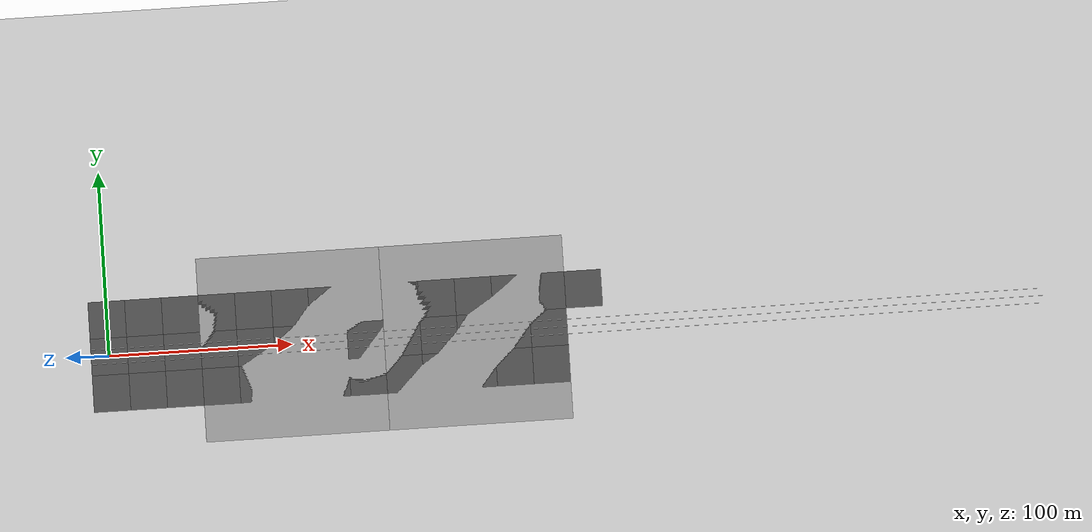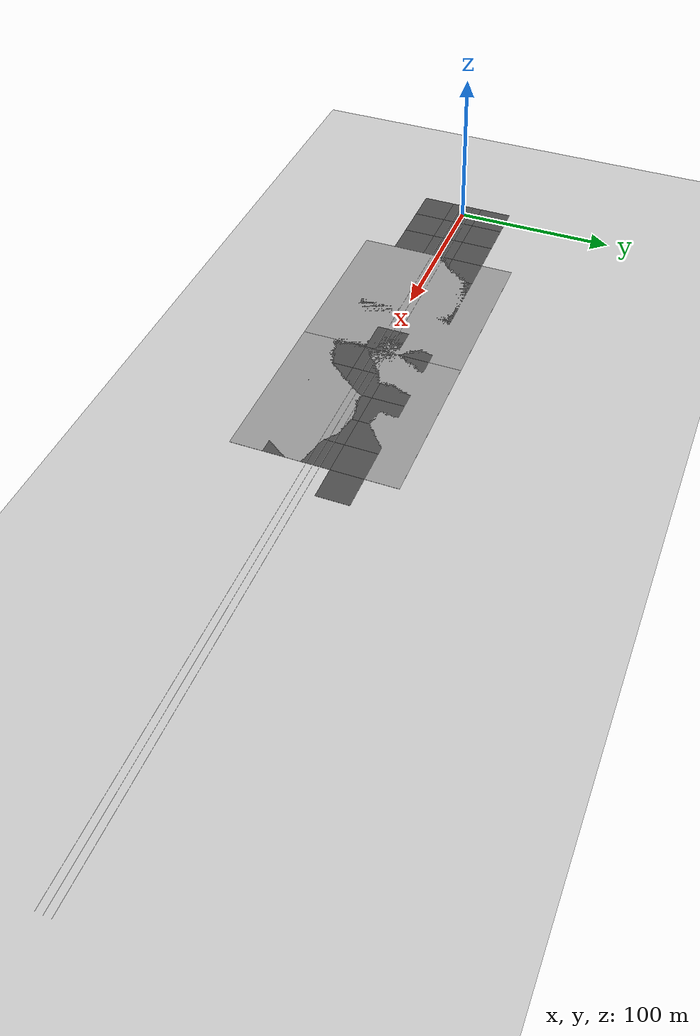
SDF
<sdf version="1.4">
 <world name="default">
  <model name="ground_plane">
   <static>1</static>
   <link name="link">
    <collision name="collision">
     <geometry><plane><normal>0 0 1</normal><size>100 100</size></plane></geometry>
     <surface><friction><ode><mu>100</mu><mu2>50</mu2></ode></friction></surface>
    </collision>
    <visual name="visual">
     <cast_shadows>0</cast_shadows>
     <geometry><plane><normal>0 0 1</normal><size>100 100</size></plane></geometry>
     <material>
      <script><uri>file://media/materials/scripts/gazebo.material</uri><name>Gazebo/Grey</name></script>
     </material>
    </visual>
    <velocity_decay><linear>0</linear><angular>0</angular></velocity_decay>
   </link>
  </model>
  <model name="ground_plane_0">
   <static>1</static>
   <link name="link">
    <collision name="collision">
     <geometry><plane><normal>0 0 1</normal><size>100 100</size></plane></geometry>
     <surface><friction><ode><mu>100</mu><mu2>50</mu2></ode></friction></surface>
    </collision>
    <visual name="visual">
     <cast_shadows>0</cast_shadows>
     <geometry><plane><normal>0 0 1</normal><size>100 100</size></plane></geometry>
     <material>
      <script><uri>file://media/materials/scripts/gazebo.material</uri><name>Gazebo/Grey</name></script>
     </material>
    </visual>
    <velocity_decay><linear>0</linear><angular>0</angular></velocity_decay>
   </link>
   <pose>100 0 0 0 -0 0</pose>
  </model>
  <model name="ground_plane_1">
   <static>1</static>
   <link name="link">
    <collision name="collision">
     <geometry><plane><normal>0 0 1</normal><size>100 100</size></plane></geometry>
     <surface><friction><ode><mu>100</mu><mu2>50</mu2></ode></friction></surface>
    </collision>
    <visual name="visual">
     <cast_shadows>0</cast_shadows>
     <geometry><plane><normal>0 0 1</normal><size>100 100</size></plane></geometry>
     <material>
      <script><uri>file://media/materials/scripts/gazebo.material</uri><name>Gazebo/Grey</name></script>
     </material>
    </visual>
    <velocity_decay><linear>0</linear><angular>0</angular></velocity_decay>
   </link>
   <pose>200 0 0 0 -0 0</pose>
  </model>
  <model name="asphalt_plane_0_m">
   <static>1</static>
   <link name="link">
    <collision name="collision"><geometry><box><size>20 20 0.1</size></box></geometry></collision>
    <visual name="visual">
     <cast_shadows>0</cast_shadows>
     <geometry><box><size>20 20 0.1</size></box></geometry>
     <material>
      <script>
       <uri>model://asphalt_plane/materials/scripts</uri>
       <uri>model://asphalt_plane/materials/textures</uri>
       <name>vrc/asphalt</name>
      </script>
     </material>
    </visual>
    <velocity_decay><linear>0</linear><angular>0</angular></velocity_decay>
   </link>
  </model>
  <model name="asphalt_plane_0_l">
   <static>1</static>
   <link name="link">
    <collision name="collision"><geometry><box><size>20 20 0.1</size></box></geometry></collision>
    <visual name="visual">
     <cast_shadows>0</cast_shadows>
     <geometry><box><size>20 20 0.1</size></box></geometry>
     <material>
      <script>
       <uri>model://asphalt_plane/materials/scripts</uri>
       <uri>model://asphalt_plane/materials/textures</uri>
       <name>vrc/asphalt</name>
      </script>
     </material>
    </visual>
    <velocity_decay><linear>0</linear><angular>0</angular></velocity_decay>
   </link>
   <pose>0 20 0 0 -0 0</pose>
  </model>
  <model name="asphalt_plane_0_r">
   <static>1</static>
   <link name="link">
    <collision name="collision"><geometry><box><size>20 20 0.1</size></box></geometry></collision>
    <visual name="visual">
     <cast_shadows>0</cast_shadows>
     <geometry><box><size>20 20 0.1</size></box></geometry>
     <material>
      <script>
       <uri>model://asphalt_plane/materials/scripts</uri>
       <uri>model://asphalt_plane/materials/textures</uri>
       <name>vrc/asphalt</name>
      </script>
     </material>
    </visual>
    <velocity_decay><linear>0</linear><angular>0</angular></velocity_decay>
   </link>
   <pose>0 -20 0 0 -0 0</pose>
  </model>
  <model name="asphalt_plane_1_m">
   <static>1</static>
   <link name="link">
    <collision name="collision"><geometry><box><size>20 20 0.1</size></box></geometry></collision>
    <visual name="visual">
     <cast_shadows>0</cast_shadows>
     <geometry><box><size>20 20 0.1</size></box></geometry>
     <material>
      <script>
       <uri>model://asphalt_plane/materials/scripts</uri>
       <uri>model://asphalt_plane/materials/textures</uri>
       <name>vrc/asphalt</name>
      </script>
     </material>
    </visual>
    <velocity_decay><linear>0</linear><angular>0</angular></velocity_decay>
   </link>
   <pose>20 0 0 0 -0 0</pose>
  </model>
  <model name="asphalt_plane_1_l">
   <static>1</static>
   <link name="link">
    <collision name="collision"><geometry><box><size>20 20 0.1</size></box></geometry></collision>
    <visual name="visual">
     <cast_shadows>0</cast_shadows>
     <geometry><box><size>20 20 0.1</size></box></geometry>
     <material>
      <script>
       <uri>model://asphalt_plane/materials/scripts</uri>
       <uri>model://asphalt_plane/materials/textures</uri>
       <name>vrc/asphalt</name>
      </script>
     </material>
    </visual>
    <velocity_decay><linear>0</linear><angular>0</angular></velocity_decay>
   </link>
   <pose>20 20 0 0 -0 0</pose>
  </model>
  <model name="asphalt_plane_1_r">
   <static>1</static>
   <link name="link">
    <collision name="collision"><geometry><box><size>20 20 0.1</size></box></geometry></collision>
    <visual name="visual">
     <cast_shadows>0</cast_shadows>
     <geometry><box><size>20 20 0.1</size></box></geometry>
     <material>
      <script>
       <uri>model://asphalt_plane/materials/scripts</uri>
       <uri>model://asphalt_plane/materials/textures</uri>
       <name>vrc/asphalt</name>
      </script>
     </material>
    </visual>
    <velocity_decay><linear>0</linear><angular>0</angular></velocity_decay>
   </link>
   <pose>20 -20 0 0 -0 0</pose>
  </model>
  <model name="asphalt_plane_2_m">
   <static>1</static>
   <link name="link">
    <collision name="collision"><geometry><box><size>20 20 0.1</size></box></geometry></collision>
    <visual name="visual">
     <cast_shadows>0</cast_shadows>
     <geometry><box><size>20 20 0.1</size></box></geometry>
     <material>
      <script>
       <uri>model://asphalt_plane/materials/scripts</uri>
       <uri>model://asphalt_plane/materials/textures</uri>
       <name>vrc/asphalt</name>
      </script>
     </material>
    </visual>
    <velocity_decay><linear>0</linear><angular>0</angular></velocity_decay>
   </link>
   <pose>40 0 0 0 -0 0</pose>
  </model>
  <model name="asphalt_plane_2_l">
   <static>1</static>
   <link name="link">
    <collision name="collision"><geometry><box><size>20 20 0.1</size></box></geometry></collision>
    <visual name="visual">
     <cast_shadows>0</cast_shadows>
     <geometry><box><size>20 20 0.1</size></box></geometry>
     <material>
      <script>
       <uri>model://asphalt_plane/materials/scripts</uri>
       <uri>model://asphalt_plane/materials/textures</uri>
       <name>vrc/asphalt</name>
      </script>
     </material>
    </visual>
    <velocity_decay><linear>0</linear><angular>0</angular></velocity_decay>
   </link>
   <pose>40 20 0 0 -0 0</pose>
  </model>
  <model name="asphalt_plane_2_r">
   <static>1</static>
   <link name="link">
    <collision name="collision"><geometry><box><size>20 20 0.1</size></box></geometry></collision>
    <visual name="visual">
     <cast_shadows>0</cast_shadows>
     <geometry><box><size>20 20 0.1</size></box></geometry>
     <material>
      <script>
       <uri>model://asphalt_plane/materials/scripts</uri>
       <uri>model://asphalt_plane/materials/textures</uri>
       <name>vrc/asphalt</name>
      </script>
     </material>
    </visual>
    <velocity_decay><linear>0</linear><angular>0</angular></velocity_decay>
   </link>
   <pose>40 -20 0 0 -0 0</pose>
  </model>
  <model name="asphalt_plane_3_m">
   <static>1</static>
   <link name="link">
    <collision name="collision"><geometry><box><size>20 20 0.1</size></box></geometry></collision>
    <visual name="visual">
     <cast_shadows>0</cast_shadows>
     <geometry><box><size>20 20 0.1</size></box></geometry>
     <material>
      <script>
       <uri>model://asphalt_plane/materials/scripts</uri>
       <uri>model://asphalt_plane/materials/textures</uri>
       <name>vrc/asphalt</name>
      </script>
     </material>
    </visual>
    <velocity_decay><linear>0</linear><angular>0</angular></velocity_decay>
   </link>
   <pose>60 0 0 0 -0 0</pose>
  </model>
  <model name="asphalt_plane_3_l">
   <static>1</static>
   <link name="link">
    <collision name="collision"><geometry><box><size>20 20 0.1</size></box></geometry></collision>
    <visual name="visual">
     <cast_shadows>0</cast_shadows>
     <geometry><box><size>20 20 0.1</size></box></geometry>
     <material>
      <script>
       <uri>model://asphalt_plane/materials/scripts</uri>
       <uri>model://asphalt_plane/materials/textures</uri>
       <name>vrc/asphalt</name>
      </script>
     </material>
    </visual>
    <velocity_decay><linear>0</linear><angular>0</angular></velocity_decay>
   </link>
   <pose>60 20 0 0 -0 0</pose>
  </model>
  <model name="asphalt_plane_3_r">
   <static>1</static>
   <link name="link">
    <collision name="collision"><geometry><box><size>20 20 0.1</size></box></geometry></collision>
    <visual name="visual">
     <cast_shadows>0</cast_shadows>
     <geometry><box><size>20 20 0.1</size></box></geometry>
     <material>
      <script>
       <uri>model://asphalt_plane/materials/scripts</uri>
       <uri>model://asphalt_plane/materials/textures</uri>
       <name>vrc/asphalt</name>
      </script>
     </material>
    </visual>
    <velocity_decay><linear>0</linear><angular>0</angular></velocity_decay>
   </link>
   <pose>60 -20 0 0 -0 0</pose>
  </model>
  <model name="asphalt_plane_4_m">
   <static>1</static>
   <link name="link">
    <collision name="collision"><geometry><box><size>20 20 0.1</size></box></geometry></collision>
    <visual name="visual">
     <cast_shadows>0</cast_shadows>
     <geometry><box><size>20 20 0.1</size></box></geometry>
     <material>
      <script>
       <uri>model://asphalt_plane/materials/scripts</uri>
       <uri>model://asphalt_plane/materials/textures</uri>
       <name>vrc/asphalt</name>
      </script>
     </material>
    </visual>
    <velocity_decay><linear>0</linear><angular>0</angular></velocity_decay>
   </link>
   <pose>80 0 0 0 -0 0</pose>
  </model>
  <model name="asphalt_plane_4_l">
   <static>1</static>
   <link name="link">
    <collision name="collision"><geometry><box><size>20 20 0.1</size></box></geometry></collision>
    <visual name="visual">
     <cast_shadows>0</cast_shadows>
     <geometry><box><size>20 20 0.1</size></box></geometry>
     <material>
      <script>
       <uri>model://asphalt_plane/materials/scripts</uri>
       <uri>model://asphalt_plane/materials/textures</uri>
       <name>vrc/asphalt</name>
      </script>
     </material>
    </visual>
    <velocity_decay><linear>0</linear><angular>0</angular></velocity_decay>
   </link>
   <pose>80 20 0 0 -0 0</pose>
  </model>
  <model name="asphalt_plane_4_r">
   <static>1</static>
   <link name="link">
    <collision name="collision"><geometry><box><size>20 20 0.1</size></box></geometry></collision>
    <visual name="visual">
     <cast_shadows>0</cast_shadows>
     <geometry><box><size>20 20 0.1</size></box></geometry>
     <material>
      <script>
       <uri>model://asphalt_plane/materials/scripts</uri>
       <uri>model://asphalt_plane/materials/textures</uri>
       <name>vrc/asphalt</name>
      </script>
     </material>
    </visual>
    <velocity_decay><linear>0</linear><angular>0</angular></velocity_decay>
   </link>
   <pose>80 -20 0 0 -0 0</pose>
  </model>
  <model name="asphalt_plane_5_m">
   <static>1</static>
   <link name="link">
    <collision name="collision"><geometry><box><size>20 20 0.1</size></box></geometry></collision>
    <visual name="visual">
     <cast_shadows>0</cast_shadows>
     <geometry><box><size>20 20 0.1</size></box></geometry>
     <material>
      <script>
       <uri>model://asphalt_plane/materials/scripts</uri>
       <uri>model://asphalt_plane/materials/textures</uri>
       <name>vrc/asphalt</name>
      </script>
     </material>
    </visual>
    <velocity_decay><linear>0</linear><angular>0</angular></velocity_decay>
   </link>
   <pose>100 0 0 0 -0 0</pose>
  </model>
  <model name="asphalt_plane_5_l">
   <static>1</static>
   <link name="link">
    <collision name="collision"><geometry><box><size>20 20 0.1</size></box></geometry></collision>
    <visual name="visual">
     <cast_shadows>0</cast_shadows>
     <geometry><box><size>20 20 0.1</size></box></geometry>
     <material>
      <script>
       <uri>model://asphalt_plane/materials/scripts</uri>
       <uri>model://asphalt_plane/materials/textures</uri>
       <name>vrc/asphalt</name>
      </script>
     </material>
    </visual>
    <velocity_decay><linear>0</linear><angular>0</angular></velocity_decay>
   </link>
   <pose>100 20 0 0 -0 0</pose>
  </model>
  <model name="asphalt_plane_5_r">
   <static>1</static>
   <link name="link">
    <collision name="collision"><geometry><box><size>20 20 0.1</size></box></geometry></collision>
    <visual name="visual">
     <cast_shadows>0</cast_shadows>
     <geometry><box><size>20 20 0.1</size></box></geometry>
     <material>
      <script>
       <uri>model://asphalt_plane/materials/scripts</uri>
       <uri>model://asphalt_plane/materials/textures</uri>
       <name>vrc/asphalt</name>
      </script>
     </material>
    </visual>
    <velocity_decay><linear>0</linear><angular>0</angular></velocity_decay>
   </link>
   <pose>100 -20 0 0 -0 0</pose>
  </model>
  <model name="asphalt_plane_6_m">
   <static>1</static>
   <link name="link">
    <collision name="collision"><geometry><box><size>20 20 0.1</size></box></geometry></collision>
    <visual name="visual">
     <cast_shadows>0</cast_shadows>
     <geometry><box><size>20 20 0.1</size></box></geometry>
     <material>
      <script>
       <uri>model://asphalt_plane/materials/scripts</uri>
       <uri>model://asphalt_plane/materials/textures</uri>
       <name>vrc/asphalt</name>
      </script>
     </material>
    </visual>
    <velocity_decay><linear>0</linear><angular>0</angular></velocity_decay>
   </link>
   <pose>120 0 0 0 -0 0</pose>
  </model>
  <model name="asphalt_plane_6_l">
   <static>1</static>
   <link name="link">
    <collision name="collision"><geometry><box><size>20 20 0.1</size></box></geometry></collision>
    <visual name="visual">
     <cast_shadows>0</cast_shadows>
     <geometry><box><size>20 20 0.1</size></box></geometry>
     <material>
      <script>
       <uri>model://asphalt_plane/materials/scripts</uri>
       <uri>model://asphalt_plane/materials/textures</uri>
       <name>vrc/asphalt</name>
      </script>
     </material>
    </visual>
    <velocity_decay><linear>0</linear><angular>0</angular></velocity_decay>
   </link>
   <pose>120 20 0 0 -0 0</pose>
  </model>
  <model name="asphalt_plane_6_r">
   <static>1</static>
   <link name="link">
    <collision name="collision"><geometry><box><size>20 20 0.1</size></box></geometry></collision>
    <visual name="visual">
     <cast_shadows>0</cast_shadows>
     <geometry><box><size>20 20 0.1</size></box></geometry>
     <material>
      <script>
       <uri>model://asphalt_plane/materials/scripts</uri>
       <uri>model://asphalt_plane/materials/textures</uri>
       <name>vrc/asphalt</name>
      </script>
     </material>
    </visual>
    <velocity_decay><linear>0</linear><angular>0</angular></velocity_decay>
   </link>
   <pose>120 -20 0 0 -0 0</pose>
  </model>
  <model name="asphalt_plane_7_m">
   <static>1</static>
   <link name="link">
    <collision name="collision"><geometry><box><size>20 20 0.1</size></box></geometry></collision>
    <visual name="visual">
     <cast_shadows>0</cast_shadows>
     <geometry><box><size>20 20 0.1</size></box></geometry>
     <material>
      <script>
       <uri>model://asphalt_plane/materials/scripts</uri>
       <uri>model://asphalt_plane/materials/textures</uri>
       <name>vrc/asphalt</name>
      </script>
     </material>
    </visual>
    <velocity_decay><linear>0</linear><angular>0</angular></velocity_decay>
   </link>
   <pose>139.997 -0.018521 0 0 -0 0</pose>
  </model>
  <model name="asphalt_plane_7_l">
   <static>1</static>
   <link name="link">
    <collision name="collision"><geometry><box><size>20 20 0.1</size></box></geometry></collision>
    <visual name="visual">
     <cast_shadows>0</cast_shadows>
     <geometry><box><size>20 20 0.1</size></box></geometry>
     <material>
      <script>
       <uri>model://asphalt_plane/materials/scripts</uri>
       <uri>model://asphalt_plane/materials/textures</uri>
       <name>vrc/asphalt</name>
      </script>
     </material>
    </visual>
    <velocity_decay><linear>0</linear><angular>0</angular></velocity_decay>
   </link>
   <pose>140 20 0 0 -0 0</pose>
  </model>
  <model name="asphalt_plane_7_r">
   <static>1</static>
   <link name="link">
    <collision name="collision"><geometry><box><size>20 20 0.1</size></box></geometry></collision>
    <visual name="visual">
     <cast_shadows>0</cast_shadows>
     <geometry><box><size>20 20 0.1</size></box></geometry>
     <material>
      <script>
       <uri>model://asphalt_plane/materials/scripts</uri>
       <uri>model://asphalt_plane/materials/textures</uri>
       <name>vrc/asphalt</name>
      </script>
     </material>
    </visual>
    <velocity_decay><linear>0</linear><angular>0</angular></velocity_decay>
   </link>
   <pose>140 -20 0 0 -0 0</pose>
  </model>
  <model name="asphalt_plane_8_m">
   <static>1</static>
   <link name="link">
    <collision name="collision"><geometry><box><size>20 20 0.1</size></box></geometry></collision>
    <visual name="visual">
     <cast_shadows>0</cast_shadows>
     <geometry><box><size>20 20 0.1</size></box></geometry>
     <material>
      <script>
       <uri>model://asphalt_plane/materials/scripts</uri>
       <uri>model://asphalt_plane/materials/textures</uri>
       <name>vrc/asphalt</name>
      </script>
     </material>
    </visual>
    <velocity_decay><linear>0</linear><angular>0</angular></velocity_decay>
   </link>
   <pose>160 0 0 0 -0 0</pose>
  </model>
  <model name="asphalt_plane_8_l">
   <static>1</static>
   <link name="link">
    <collision name="collision"><geometry><box><size>20 20 0.1</size></box></geometry></collision>
    <visual name="visual">
     <cast_shadows>0</cast_shadows>
     <geometry><box><size>20 20 0.1</size></box></geometry>
     <material>
      <script>
       <uri>model://asphalt_plane/materials/scripts</uri>
       <uri>model://asphalt_plane/materials/textures</uri>
       <name>vrc/asphalt</name>
      </script>
     </material>
    </visual>
    <velocity_decay><linear>0</linear><angular>0</angular></velocity_decay>
   </link>
   <pose>160 20 0 0 -0 0</pose>
  </model>
  <model name="asphalt_plane_8_r">
   <static>1</static>
   <link name="link">
    <collision name="collision"><geometry><box><size>20 20 0.1</size></box></geometry></collision>
    <visual name="visual">
     <cast_shadows>0</cast_shadows>
     <geometry><box><size>20 20 0.1</size></box></geometry>
     <material>
      <script>
       <uri>model://asphalt_plane/materials/scripts</uri>
       <uri>model://asphalt_plane/materials/textures</uri>
       <name>vrc/asphalt</name>
      </script>
     </material>
    </visual>
    <velocity_decay><linear>0</linear><angular>0</angular></velocity_decay>
   </link>
   <pose>160 -20 0 0 -0 0</pose>
  </model>
  <model name="asphalt_plane_9_m">
   <static>1</static>
   <link name="link">
    <collision name="collision"><geometry><box><size>20 20 0.1</size></box></geometry></collision>
    <visual name="visual">
     <cast_shadows>0</cast_shadows>
     <geometry><box><size>20 20 0.1</size></box></geometry>
     <material>
      <script>
       <uri>model://asphalt_plane/materials/scripts</uri>
       <uri>model://asphalt_plane/materials/textures</uri>
       <name>vrc/asphalt</name>
      </script>
     </material>
    </visual>
    <velocity_decay><linear>0</linear><angular>0</angular></velocity_decay>
   </link>
   <pose>180 0 0 0 -0 0</pose>
  </model>
  <model name="asphalt_plane_9_l">
   <static>1</static>
   <link name="link">
    <collision name="collision"><geometry><box><size>20 20 0.1</size></box></geometry></collision>
    <visual name="visual">
     <cast_shadows>0</cast_shadows>
     <geometry><box><size>20 20 0.1</size></box></geometry>
     <material>
      <script>
       <uri>model://asphalt_plane/materials/scripts</uri>
       <uri>model://asphalt_plane/materials/textures</uri>
       <name>vrc/asphalt</name>
      </script>
     </material>
    </visual>
    <velocity_decay><linear>0</linear><angular>0</angular></velocity_decay>
   </link>
   <pose>180 20 0 0 -0 0</pose>
  </model>
  <model name="asphalt_plane_9_r">
   <static>1</static>
   <link name="link">
    <collision name="collision"><geometry><box><size>20 20 0.1</size></box></geometry></collision>
    <visual name="visual">
     <cast_shadows>0</cast_shadows>
     <geometry><box><size>20 20 0.1</size></box></geometry>
     <material>
      <script>
       <uri>model://asphalt_plane/materials/scripts</uri>
       <uri>model://asphalt_plane/materials/textures</uri>
       <name>vrc/asphalt</name>
      </script>
     </material>
    </visual>
    <velocity_decay><linear>0</linear><angular>0</angular></velocity_decay>
   </link>
   <pose>180 -20 0 0 -0 0</pose>
  </model>
  <model name="asphalt_plane_10_m">
   <static>1</static>
   <link name="link">
    <collision name="collision"><geometry><box><size>20 20 0.1</size></box></geometry></collision>
    <visual name="visual">
     <cast_shadows>0</cast_shadows>
     <geometry><box><size>20 20 0.1</size></box></geometry>
     <material>
      <script>
       <uri>model://asphalt_plane/materials/scripts</uri>
       <uri>model://asphalt_plane/materials/textures</uri>
       <name>vrc/asphalt</name>
      </script>
     </material>
    </visual>
    <velocity_decay><linear>0</linear><angular>0</angular></velocity_decay>
   </link>
   <pose>200 0 0 0 -0 0</pose>
  </model>
  <model name="asphalt_plane_10_l">
   <static>1</static>
   <link name="link">
    <collision name="collision"><geometry><box><size>20 20 0.1</size></box></geometry></collision>
    <visual name="visual">
     <cast_shadows>0</cast_shadows>
     <geometry><box><size>20 20 0.1</size></box></geometry>
     <material>
      <script>
       <uri>model://asphalt_plane/materials/scripts</uri>
       <uri>model://asphalt_plane/materials/textures</uri>
       <name>vrc/asphalt</name>
      </script>
     </material>
    </visual>
    <velocity_decay><linear>0</linear><angular>0</angular></velocity_decay>
   </link>
   <pose>200 20 0 0 -0 0</pose>
  </model>
  <model name="asphalt_plane_10_r">
   <static>1</static>
   <link name="link">
    <collision name="collision"><geometry><box><size>20 20 0.1</size></box></geometry></collision>
    <visual name="visual">
     <cast_shadows>0</cast_shadows>
     <geometry><box><size>20 20 0.1</size></box></geometry>
     <material>
      <script>
       <uri>model://asphalt_plane/materials/scripts</uri>
       <uri>model://asphalt_plane/materials/textures</uri>
       <name>vrc/asphalt</name>
      </script>
     </material>
    </visual>
    <velocity_decay><linear>0</linear><angular>0</angular></velocity_decay>
   </link>
   <pose>200 -20 0 0 -0 0</pose>
  </model>
  <model name="asphalt_plane_1">
   <static>1</static>
   <link name="link">
    <collision name="collision"><geometry><box><size>20 20 0.1</size></box></geometry></collision>
    <visual name="visual">
     <cast_shadows>0</cast_shadows>
     <geometry><box><size>20 20 0.1</size></box></geometry>
     <material>
      <script>
       <uri>model://asphalt_plane/materials/scripts</uri>
       <uri>model://asphalt_plane/materials/textures</uri>
       <name>vrc/asphalt</name>
      </script>
     </material>
    </visual>
    <velocity_decay><linear>0</linear><angular>0</angular></velocity_decay>
   </link>
   <pose>220 20 0 0 -0 0</pose>
  </model>
  <model name="asphalt_plane_2">
   <static>1</static>
   <link name="link">
    <collision name="collision"><geometry><box><size>20 20 0.1</size></box></geometry></collision>
    <visual name="visual">
     <cast_shadows>0</cast_shadows>
     <geometry><box><size>20 20 0.1</size></box></geometry>
     <material>
      <script>
       <uri>model://asphalt_plane/materials/scripts</uri>
       <uri>model://asphalt_plane/materials/textures</uri>
       <name>vrc/asphalt</name>
      </script>
     </material>
    </visual>
    <velocity_decay><linear>0</linear><angular>0</angular></velocity_decay>
   </link>
   <pose>220 0 0 0 -0 0</pose>
  </model>
  <model name="asphalt_plane_3">
   <static>1</static>
   <link name="link">
    <collision name="collision"><geometry><box><size>20 20 0.1</size></box></geometry></collision>
    <visual name="visual">
     <cast_shadows>0</cast_shadows>
     <geometry><box><size>20 20 0.1</size></box></geometry>
     <material>
      <script>
       <uri>model://asphalt_plane/materials/scripts</uri>
       <uri>model://asphalt_plane/materials/textures</uri>
       <name>vrc/asphalt</name>
      </script>
     </material>
    </visual>
    <velocity_decay><linear>0</linear><angular>0</angular></velocity_decay>
   </link>
   <pose>220 -20 0 0 -0 0</pose>
  </model>
  <model name="asphalt_plane_4">
   <static>1</static>
   <link name="link">
    <collision name="collision"><geometry><box><size>20 20 0.1</size></box></geometry></collision>
    <visual name="visual">
     <cast_shadows>0</cast_shadows>
     <geometry><box><size>20 20 0.1</size></box></geometry>
     <material>
      <script>
       <uri>model://asphalt_plane/materials/scripts</uri>
       <uri>model://asphalt_plane/materials/textures</uri>
       <name>vrc/asphalt</name>
      </script>
     </material>
    </visual>
    <velocity_decay><linear>0</linear><angular>0</angular></velocity_decay>
   </link>
   <pose>240 20 0 0 -0 0</pose>
  </model>
  <model name="asphalt_plane_5">
   <static>1</static>
   <link name="link">
    <collision name="collision"><geometry><box><size>20 20 0.1</size></box></geometry></collision>
    <visual name="visual">
     <cast_shadows>0</cast_shadows>
     <geometry><box><size>20 20 0.1</size></box></geometry>
     <material>
      <script>
       <uri>model://asphalt_plane/materials/scripts</uri>
       <uri>model://asphalt_plane/materials/textures</uri>
       <name>vrc/asphalt</name>
      </script>
     </material>
    </visual>
    <velocity_decay><linear>0</linear><angular>0</angular></velocity_decay>
   </link>
   <pose>240 0 0 0 -0 0</pose>
  </model>
  <model name="asphalt_plane_6">
   <static>1</static>
   <link name="link">
    <collision name="collision"><geometry><box><size>20 20 0.1</size></box></geometry></collision>
    <visual name="visual">
     <cast_shadows>0</cast_shadows>
     <geometry><box><size>20 20 0.1</size></box></geometry>
     <material>
      <script>
       <uri>model://asphalt_plane/materials/scripts</uri>
       <uri>model://asphalt_plane/materials/textures</uri>
       <name>vrc/asphalt</name>
      </script>
     </material>
    </visual>
    <velocity_decay><linear>0</linear><angular>0</angular></velocity_decay>
   </link>
   <pose>240 -20 0 0 -0 0</pose>
  </model>
  <model name="asphalt_plane_7">
   <static>1</static>
   <link name="link">
    <collision name="collision"><geometry><box><size>20 20 0.1</size></box></geometry></collision>
    <visual name="visual">
     <cast_shadows>0</cast_shadows>
     <geometry><box><size>20 20 0.1</size></box></geometry>
     <material>
      <script>
       <uri>model://asphalt_plane/materials/scripts</uri>
       <uri>model://asphalt_plane/materials/textures</uri>
       <name>vrc/asphalt</name>
      </script>
     </material>
    </visual>
    <velocity_decay><linear>0</linear><angular>0</angular></velocity_decay>
   </link>
   <pose>260 20 0 0 -0 0</pose>
  </model>
  <model name="white_line">
   <static>1</static>
   <pose>250 -0 0.056527 -2e-06 0 0</pose>
   <link name="link">
    <inertial>
     <mass>10000</mass>
     <inertia><ixx>1</ixx><ixy>0</ixy><ixz>0</ixz><iyy>1</iyy><iyz>0</iyz><izz>1</izz></inertia>
    </inertial>
    <collision name="collision"><geometry><box><size>200 0.15 0.01</size></box></geometry></collision>
    <visual name="visual">
     <geometry><box><size>520 0.15 0.001</size></box></geometry>
     <material>
      <script><uri>file://media/materials/scripts/gazebo.material</uri><name>Gazebo/White</name></script>
     </material>
    </visual>
    <velocity_decay><linear>0</linear><angular>0</angular></velocity_decay>
    <gravity>0</gravity>
   </link>
   <static>0</static>
  </model>
  <model name="left_line">
   <static>1</static>
   <pose>250 -4 0.056527 -2e-06 0 0</pose>
   <link name="link">
    <inertial>
     <mass>10000</mass>
     <inertia><ixx>1</ixx><ixy>0</ixy><ixz>0</ixz><iyy>1</iyy><iyz>0</iyz><izz>1</izz></inertia>
    </inertial>
    <collision name="collision"><geometry><box><size>200 0.15 0.01</size></box></geometry></collision>
    <visual name="visual">
     <geometry><box><size>520 0.15 0.001</size></box></geometry>
     <material>
      <script><uri>file://media/materials/scripts/gazebo.material</uri><name>Gazebo/White</name></script>
     </material>
    </visual>
    <velocity_decay><linear>0</linear><angular>0</angular></velocity_decay>
    <gravity>0</gravity>
   </link>
   <static>0</static>
  </model>
  <model name="right_line">
   <static>1</static>
   <pose>250 4 0.056527 -2e-06 0 0</pose>
   <link name="link">
    <inertial>
     <mass>10000</mass>
     <inertia><ixx>1</ixx><ixy>0</ixy><ixz>0</ixz><iyy>1</iyy><iyz>0</iyz><izz>1</izz></inertia>
    </inertial>
    <collision name="collision"><geometry><box><size>200 0.15 0.01</size></box></geometry></collision>
    <visual name="visual">
     <geometry><box><size>520 0.15 0.001</size></box></geometry>
     <material>
      <script><uri>file://media/materials/scripts/gazebo.material</uri><name>Gazebo/White</name></script>
     </material>
    </visual>
    <velocity_decay><linear>0</linear><angular>0</angular></velocity_decay>
    <gravity>0</gravity>
   </link>
   <static>0</static>
  </model>
 </world>
</sdf>
